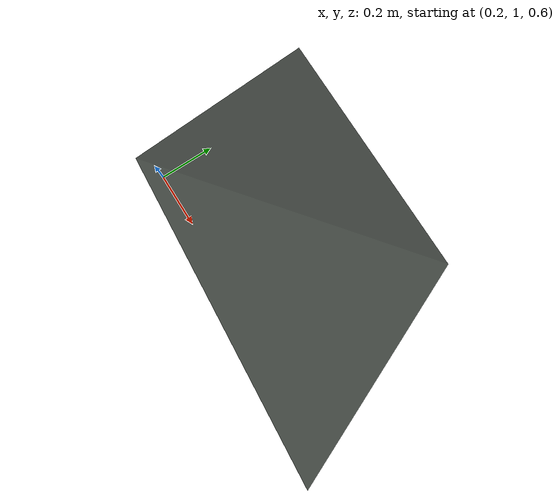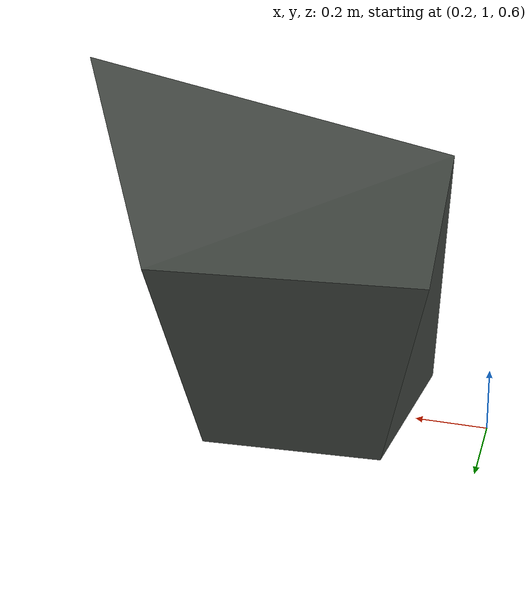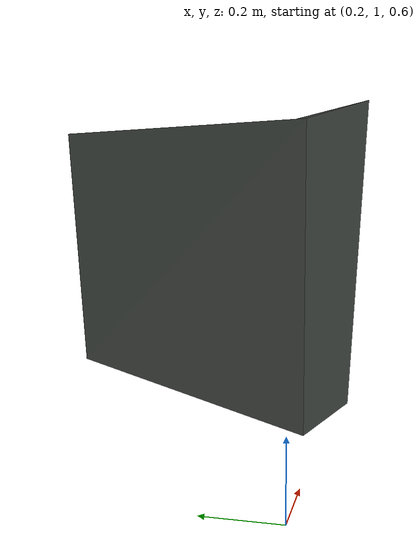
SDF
<?xml version='1.0'?>
<sdf version='1.6'>
  <model name='rock'>
    <link name='link_0'>
      <pose frame=''>0 0 0 0 -0 0</pose>
      <gravity>0</gravity>
      <self_collide>0</self_collide>
      <kinematic>0</kinematic>
      <enable_wind>0</enable_wind>
      <visual name='visual'>
        <pose frame=''>0 0 0 0 -0 0</pose>
        <geometry>
          <mesh>
            <uri>model://rock/meshes/rock.dae</uri>
          </mesh>
        </geometry>
        <material>
          <lighting>1</lighting>
          <ambient>0.26 0.28 0.26 1</ambient>
          <diffuse>0.26 0.28 0.26 1</diffuse>
          <specular>0.01 0.01 0.01 1</specular>
          <emissive>0 0 0 1</emissive>
        </material>
        <transparency>0</transparency>
        <cast_shadows>1</cast_shadows>
      </visual>
      <collision name='collision'>
        <laser_retro>0</laser_retro>
        <max_contacts>10</max_contacts>
        <pose frame=''>0 0 0 0 -0 0</pose>
        <geometry>
          <mesh>
            <uri>model://rock/meshes/rock.dae</uri>
          </mesh>
        </geometry>
      </collision>
    </link>
    <static>1</static>
    <allow_auto_disable>1</allow_auto_disable>
  </model>
</sdf>
